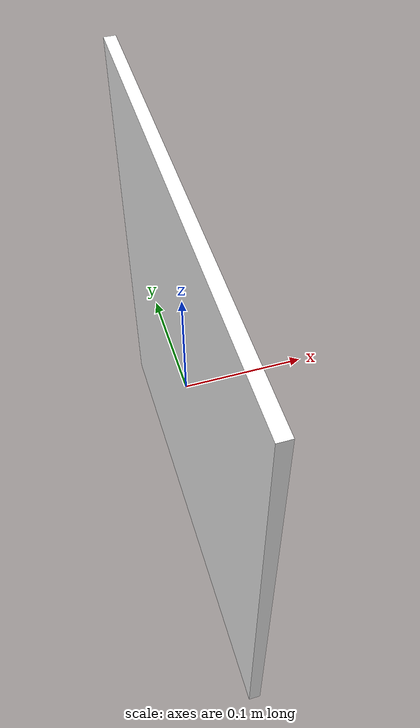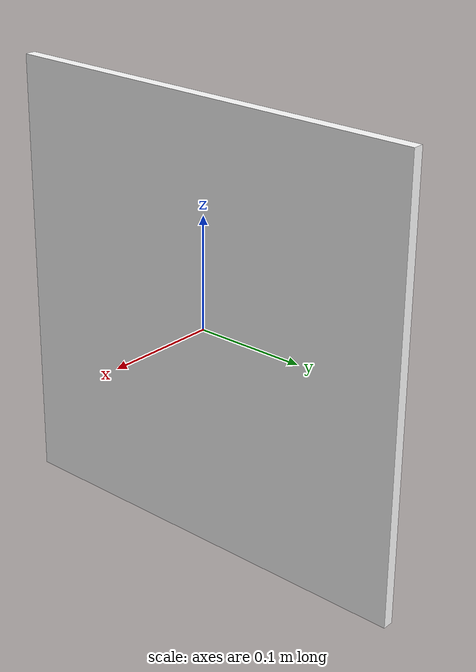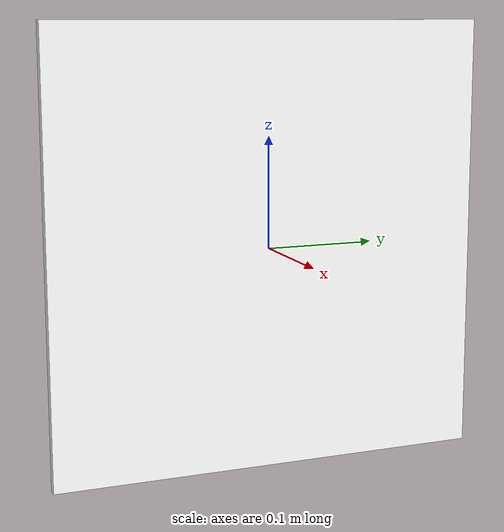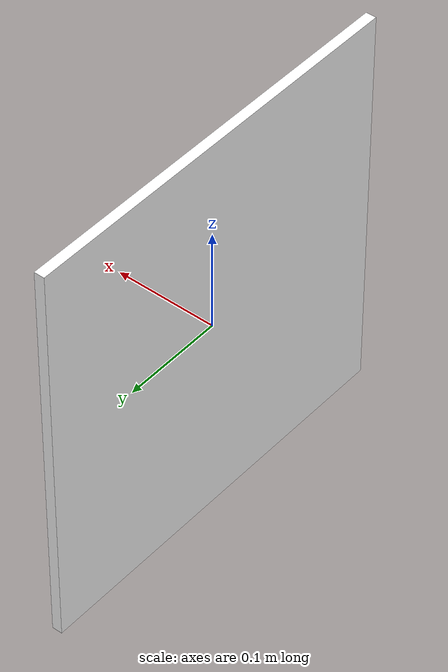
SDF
<?xml version="1.0" ?>
<sdf version="1.9">
  <model name="aruco_marker_0">
    <static>true</static>
    <link name="link">

      <visual name="visual">
        <geometry>
          <!-- thin in X (0.01 m), 0.4 m wide (Y) × 0.4 m tall (Z) -->
          <box><size>0.01 0.4 0.4</size></box>
        </geometry>
        <material>
          <diffuse>1 1 1 1</diffuse>
          <specular>0.05 0.05 0.05 1</specular>
          <pbr>
            <metal>
              <albedo_map>model://aruco_marker_0/materials/textures/aruco_marker_0.png</albedo_map>
              <metalness>0.0</metalness>
              <roughness>1.0</roughness>
            </metal>
          </pbr>
        </material>
      </visual>

      <collision name="collision">
        <geometry>
          <box><size>0.01 0.4 0.4</size></box>
        </geometry>
      </collision>

    </link>
  </model>
</sdf>
